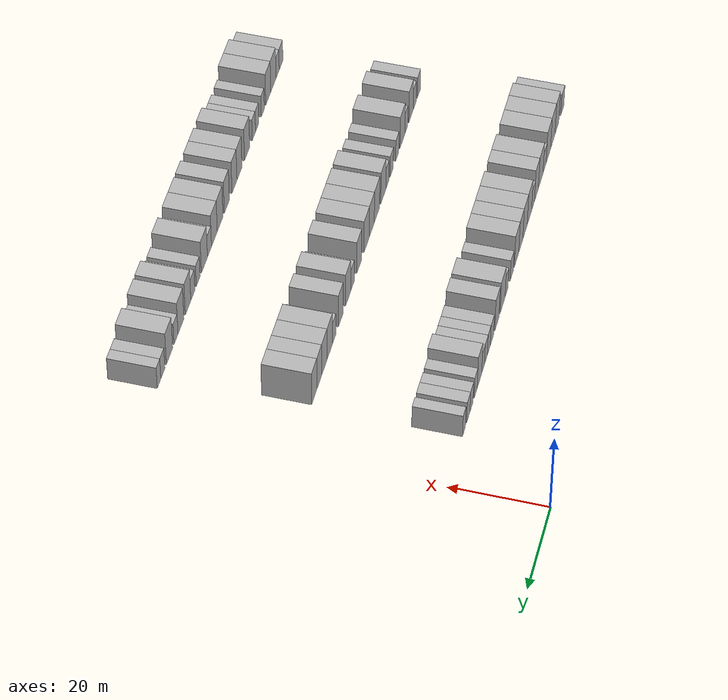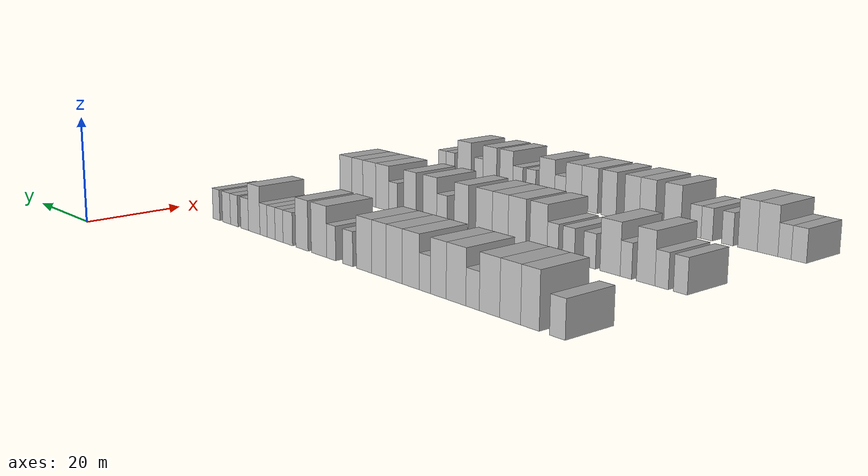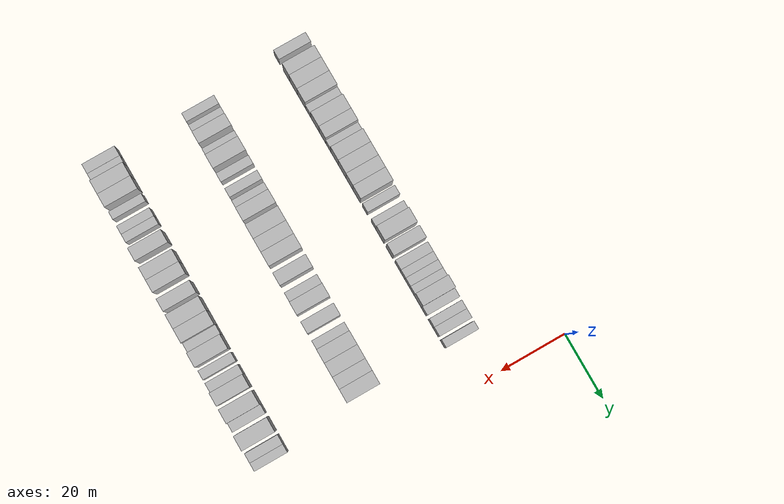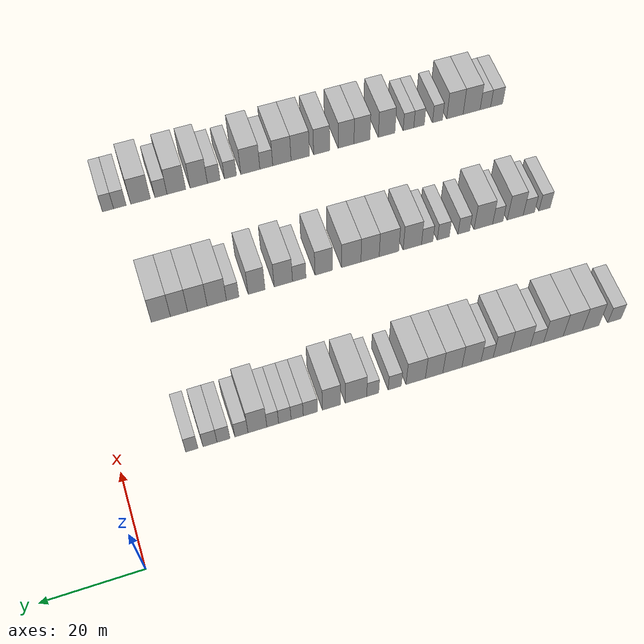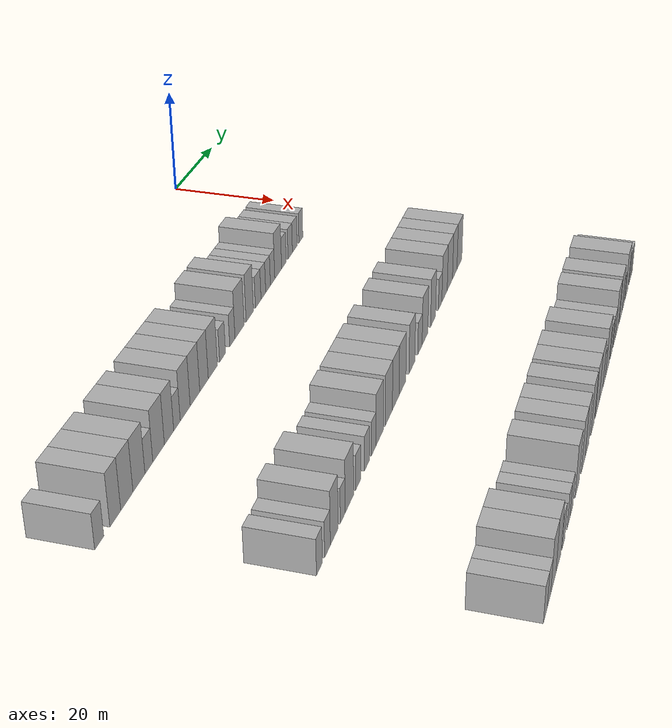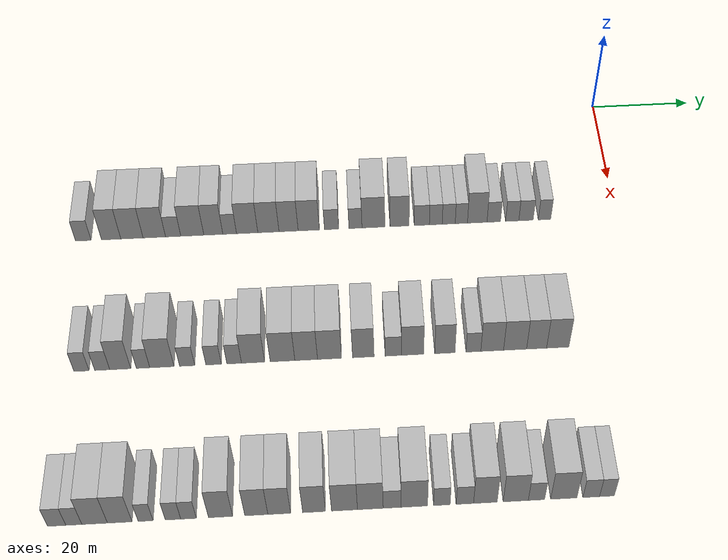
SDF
<sdf version="1.6">
 <world name="default">
  <model name="building_46">
   <static>1</static>
   <pose>25.0000 -104.0345 0 0.000000 0.000000 0.000000</pose>
   <link name="link">
    <pose>0 0 3.00 0 0 0</pose>
    <collision name="collision"><geometry><box><size>10.0000 2.9891 6.0000</size></box></geometry></collision>
    <visual name="visual">
     <cast_shadows>0</cast_shadows>
     <geometry><box><size>10.0000 2.9891 6.0000</size></box></geometry>
     <material>
      <script>
       <uri>model://HANNAS_wall/materials/scripts</uri>
       <uri>model://HANNAS_wall/materials/textures</uri>
       <name>vrc/HANNAS_wall</name>
      </script>
     </material>
    </visual>
   </link>
  </model>
  <model name="building_47">
   <static>1</static>
   <pose>25.0000 -98.6809 0 0.000000 0.000000 0.000000</pose>
   <link name="link">
    <pose>0 0 4.50 0 0 0</pose>
    <collision name="collision"><geometry><box><size>10.0000 3.7179 9.0000</size></box></geometry></collision>
    <visual name="visual">
     <cast_shadows>0</cast_shadows>
     <geometry><box><size>10.0000 3.7179 9.0000</size></box></geometry>
     <material>
      <script>
       <uri>model://HANNAS_wall/materials/scripts</uri>
       <uri>model://HANNAS_wall/materials/textures</uri>
       <name>vrc/HANNAS_wall</name>
      </script>
     </material>
    </visual>
   </link>
  </model>
  <model name="building_48">
   <static>1</static>
   <pose>25.0000 -94.6709 0 0.000000 0.000000 0.000000</pose>
   <link name="link">
    <pose>0 0 4.50 0 0 0</pose>
    <collision name="collision"><geometry><box><size>10.0000 4.3020 9.0000</size></box></geometry></collision>
    <visual name="visual">
     <cast_shadows>0</cast_shadows>
     <geometry><box><size>10.0000 4.3020 9.0000</size></box></geometry>
     <material>
      <script>
       <uri>model://HANNAS_wall/materials/scripts</uri>
       <uri>model://HANNAS_wall/materials/textures</uri>
       <name>vrc/HANNAS_wall</name>
      </script>
     </material>
    </visual>
   </link>
  </model>
  <model name="building_49">
   <static>1</static>
   <pose>25.0000 -90.3469 0 0.000000 0.000000 0.000000</pose>
   <link name="link">
    <pose>0 0 4.50 0 0 0</pose>
    <collision name="collision"><geometry><box><size>10.0000 4.3460 9.0000</size></box></geometry></collision>
    <visual name="visual">
     <cast_shadows>0</cast_shadows>
     <geometry><box><size>10.0000 4.3460 9.0000</size></box></geometry>
     <material>
      <script>
       <uri>model://HANNAS_wall/materials/scripts</uri>
       <uri>model://HANNAS_wall/materials/textures</uri>
       <name>vrc/HANNAS_wall</name>
      </script>
     </material>
    </visual>
   </link>
  </model>
  <model name="building_50">
   <static>1</static>
   <pose>25.0000 -86.6981 0 0.000000 0.000000 0.000000</pose>
   <link name="link">
    <pose>0 0 3.00 0 0 0</pose>
    <collision name="collision"><geometry><box><size>10.0000 2.9517 6.0000</size></box></geometry></collision>
    <visual name="visual">
     <cast_shadows>0</cast_shadows>
     <geometry><box><size>10.0000 2.9517 6.0000</size></box></geometry>
     <material>
      <script>
       <uri>model://HANNAS_wall/materials/scripts</uri>
       <uri>model://HANNAS_wall/materials/textures</uri>
       <name>vrc/HANNAS_wall</name>
      </script>
     </material>
    </visual>
   </link>
  </model>
  <model name="building_51">
   <static>1</static>
   <pose>25.0000 -82.9940 0 0.000000 0.000000 0.000000</pose>
   <link name="link">
    <pose>0 0 4.50 0 0 0</pose>
    <collision name="collision"><geometry><box><size>10.0000 4.4566 9.0000</size></box></geometry></collision>
    <visual name="visual">
     <cast_shadows>0</cast_shadows>
     <geometry><box><size>10.0000 4.4566 9.0000</size></box></geometry>
     <material>
      <script>
       <uri>model://HANNAS_wall/materials/scripts</uri>
       <uri>model://HANNAS_wall/materials/textures</uri>
       <name>vrc/HANNAS_wall</name>
      </script>
     </material>
    </visual>
   </link>
  </model>
  <model name="building_52">
   <static>1</static>
   <pose>25.0000 -78.9220 0 0.000000 0.000000 0.000000</pose>
   <link name="link">
    <pose>0 0 4.50 0 0 0</pose>
    <collision name="collision"><geometry><box><size>10.0000 3.6874 9.0000</size></box></geometry></collision>
    <visual name="visual">
     <cast_shadows>0</cast_shadows>
     <geometry><box><size>10.0000 3.6874 9.0000</size></box></geometry>
     <material>
      <script>
       <uri>model://HANNAS_wall/materials/scripts</uri>
       <uri>model://HANNAS_wall/materials/textures</uri>
       <name>vrc/HANNAS_wall</name>
      </script>
     </material>
    </visual>
   </link>
  </model>
  <model name="building_53">
   <static>1</static>
   <pose>25.0000 -75.7535 0 0.000000 0.000000 0.000000</pose>
   <link name="link">
    <pose>0 0 3.00 0 0 0</pose>
    <collision name="collision"><geometry><box><size>10.0000 2.6494 6.0000</size></box></geometry></collision>
    <visual name="visual">
     <cast_shadows>0</cast_shadows>
     <geometry><box><size>10.0000 2.6494 6.0000</size></box></geometry>
     <material>
      <script>
       <uri>model://HANNAS_wall/materials/scripts</uri>
       <uri>model://HANNAS_wall/materials/textures</uri>
       <name>vrc/HANNAS_wall</name>
      </script>
     </material>
    </visual>
   </link>
  </model>
  <model name="building_54">
   <static>1</static>
   <pose>25.0000 -72.3578 0 0.000000 0.000000 0.000000</pose>
   <link name="link">
    <pose>0 0 4.50 0 0 0</pose>
    <collision name="collision"><geometry><box><size>10.0000 4.1422 9.0000</size></box></geometry></collision>
    <visual name="visual">
     <cast_shadows>0</cast_shadows>
     <geometry><box><size>10.0000 4.1422 9.0000</size></box></geometry>
     <material>
      <script>
       <uri>model://HANNAS_wall/materials/scripts</uri>
       <uri>model://HANNAS_wall/materials/textures</uri>
       <name>vrc/HANNAS_wall</name>
      </script>
     </material>
    </visual>
   </link>
  </model>
  <model name="building_55">
   <static>1</static>
   <pose>25.0000 -68.2261 0 0.000000 0.000000 0.000000</pose>
   <link name="link">
    <pose>0 0 4.50 0 0 0</pose>
    <collision name="collision"><geometry><box><size>10.0000 4.1212 9.0000</size></box></geometry></collision>
    <visual name="visual">
     <cast_shadows>0</cast_shadows>
     <geometry><box><size>10.0000 4.1212 9.0000</size></box></geometry>
     <material>
      <script>
       <uri>model://HANNAS_wall/materials/scripts</uri>
       <uri>model://HANNAS_wall/materials/textures</uri>
       <name>vrc/HANNAS_wall</name>
      </script>
     </material>
    </visual>
   </link>
  </model>
  <model name="building_56">
   <static>1</static>
   <pose>25.0000 -64.2971 0 0.000000 0.000000 0.000000</pose>
   <link name="link">
    <pose>0 0 4.50 0 0 0</pose>
    <collision name="collision"><geometry><box><size>10.0000 3.7368 9.0000</size></box></geometry></collision>
    <visual name="visual">
     <cast_shadows>0</cast_shadows>
     <geometry><box><size>10.0000 3.7368 9.0000</size></box></geometry>
     <material>
      <script>
       <uri>model://HANNAS_wall/materials/scripts</uri>
       <uri>model://HANNAS_wall/materials/textures</uri>
       <name>vrc/HANNAS_wall</name>
      </script>
     </material>
    </visual>
   </link>
  </model>
  <model name="building_57">
   <static>1</static>
   <pose>25.0000 -60.3658 0 0.000000 0.000000 0.000000</pose>
   <link name="link">
    <pose>0 0 4.50 0 0 0</pose>
    <collision name="collision"><geometry><box><size>10.0000 4.1258 9.0000</size></box></geometry></collision>
    <visual name="visual">
     <cast_shadows>0</cast_shadows>
     <geometry><box><size>10.0000 4.1258 9.0000</size></box></geometry>
     <material>
      <script>
       <uri>model://HANNAS_wall/materials/scripts</uri>
       <uri>model://HANNAS_wall/materials/textures</uri>
       <name>vrc/HANNAS_wall</name>
      </script>
     </material>
    </visual>
   </link>
  </model>
  <model name="building_58">
   <static>1</static>
   <pose>25.0000 -55.9128 0 0.000000 0.000000 0.000000</pose>
   <link name="link">
    <pose>0 0 3.00 0 0 0</pose>
    <collision name="collision"><geometry><box><size>10.0000 2.7802 6.0000</size></box></geometry></collision>
    <visual name="visual">
     <cast_shadows>0</cast_shadows>
     <geometry><box><size>10.0000 2.7802 6.0000</size></box></geometry>
     <material>
      <script>
       <uri>model://HANNAS_wall/materials/scripts</uri>
       <uri>model://HANNAS_wall/materials/textures</uri>
       <name>vrc/HANNAS_wall</name>
      </script>
     </material>
    </visual>
   </link>
  </model>
  <model name="building_59">
   <static>1</static>
   <pose>25.0000 -51.2507 0 0.000000 0.000000 0.000000</pose>
   <link name="link">
    <pose>0 0 3.00 0 0 0</pose>
    <collision name="collision"><geometry><box><size>10.0000 2.5441 6.0000</size></box></geometry></collision>
    <visual name="visual">
     <cast_shadows>0</cast_shadows>
     <geometry><box><size>10.0000 2.5441 6.0000</size></box></geometry>
     <material>
      <script>
       <uri>model://HANNAS_wall/materials/scripts</uri>
       <uri>model://HANNAS_wall/materials/textures</uri>
       <name>vrc/HANNAS_wall</name>
      </script>
     </material>
    </visual>
   </link>
  </model>
  <model name="building_60">
   <static>1</static>
   <pose>25.0000 -47.7324 0 0.000000 0.000000 0.000000</pose>
   <link name="link">
    <pose>0 0 4.50 0 0 0</pose>
    <collision name="collision"><geometry><box><size>10.0000 4.4926 9.0000</size></box></geometry></collision>
    <visual name="visual">
     <cast_shadows>0</cast_shadows>
     <geometry><box><size>10.0000 4.4926 9.0000</size></box></geometry>
     <material>
      <script>
       <uri>model://HANNAS_wall/materials/scripts</uri>
       <uri>model://HANNAS_wall/materials/textures</uri>
       <name>vrc/HANNAS_wall</name>
      </script>
     </material>
    </visual>
   </link>
  </model>
  <model name="building_61">
   <static>1</static>
   <pose>25.0000 -42.6167 0 0.000000 0.000000 0.000000</pose>
   <link name="link">
    <pose>0 0 4.50 0 0 0</pose>
    <collision name="collision"><geometry><box><size>10.0000 3.7388 9.0000</size></box></geometry></collision>
    <visual name="visual">
     <cast_shadows>0</cast_shadows>
     <geometry><box><size>10.0000 3.7388 9.0000</size></box></geometry>
     <material>
      <script>
       <uri>model://HANNAS_wall/materials/scripts</uri>
       <uri>model://HANNAS_wall/materials/textures</uri>
       <name>vrc/HANNAS_wall</name>
      </script>
     </material>
    </visual>
   </link>
  </model>
  <model name="building_62">
   <static>1</static>
   <pose>25.0000 -38.2618 0 0.000000 0.000000 0.000000</pose>
   <link name="link">
    <pose>0 0 3.00 0 0 0</pose>
    <collision name="collision"><geometry><box><size>10.0000 2.9709 6.0000</size></box></geometry></collision>
    <visual name="visual">
     <cast_shadows>0</cast_shadows>
     <geometry><box><size>10.0000 2.9709 6.0000</size></box></geometry>
     <material>
      <script>
       <uri>model://HANNAS_wall/materials/scripts</uri>
       <uri>model://HANNAS_wall/materials/textures</uri>
       <name>vrc/HANNAS_wall</name>
      </script>
     </material>
    </visual>
   </link>
  </model>
  <model name="building_63">
   <static>1</static>
   <pose>25.0000 -35.5204 0 0.000000 0.000000 0.000000</pose>
   <link name="link">
    <pose>0 0 3.00 0 0 0</pose>
    <collision name="collision"><geometry><box><size>10.0000 2.5118 6.0000</size></box></geometry></collision>
    <visual name="visual">
     <cast_shadows>0</cast_shadows>
     <geometry><box><size>10.0000 2.5118 6.0000</size></box></geometry>
     <material>
      <script>
       <uri>model://HANNAS_wall/materials/scripts</uri>
       <uri>model://HANNAS_wall/materials/textures</uri>
       <name>vrc/HANNAS_wall</name>
      </script>
     </material>
    </visual>
   </link>
  </model>
  <model name="building_64">
   <static>1</static>
   <pose>25.0000 -32.9837 0 0.000000 0.000000 0.000000</pose>
   <link name="link">
    <pose>0 0 3.00 0 0 0</pose>
    <collision name="collision"><geometry><box><size>10.0000 2.5616 6.0000</size></box></geometry></collision>
    <visual name="visual">
     <cast_shadows>0</cast_shadows>
     <geometry><box><size>10.0000 2.5616 6.0000</size></box></geometry>
     <material>
      <script>
       <uri>model://HANNAS_wall/materials/scripts</uri>
       <uri>model://HANNAS_wall/materials/textures</uri>
       <name>vrc/HANNAS_wall</name>
      </script>
     </material>
    </visual>
   </link>
  </model>
  <model name="building_65">
   <static>1</static>
   <pose>25.0000 -30.4996 0 0.000000 0.000000 0.000000</pose>
   <link name="link">
    <pose>0 0 3.00 0 0 0</pose>
    <collision name="collision"><geometry><box><size>10.0000 2.4065 6.0000</size></box></geometry></collision>
    <visual name="visual">
     <cast_shadows>0</cast_shadows>
     <geometry><box><size>10.0000 2.4065 6.0000</size></box></geometry>
     <material>
      <script>
       <uri>model://HANNAS_wall/materials/scripts</uri>
       <uri>model://HANNAS_wall/materials/textures</uri>
       <name>vrc/HANNAS_wall</name>
      </script>
     </material>
    </visual>
   </link>
  </model>
  <model name="building_66">
   <static>1</static>
   <pose>25.0000 -27.3746 0 0.000000 0.000000 0.000000</pose>
   <link name="link">
    <pose>0 0 4.50 0 0 0</pose>
    <collision name="collision"><geometry><box><size>10.0000 3.8436 9.0000</size></box></geometry></collision>
    <visual name="visual">
     <cast_shadows>0</cast_shadows>
     <geometry><box><size>10.0000 3.8436 9.0000</size></box></geometry>
     <material>
      <script>
       <uri>model://HANNAS_wall/materials/scripts</uri>
       <uri>model://HANNAS_wall/materials/textures</uri>
       <name>vrc/HANNAS_wall</name>
      </script>
     </material>
    </visual>
   </link>
  </model>
  <model name="building_67">
   <static>1</static>
   <pose>25.0000 -24.1192 0 0.000000 0.000000 0.000000</pose>
   <link name="link">
    <pose>0 0 3.00 0 0 0</pose>
    <collision name="collision"><geometry><box><size>10.0000 2.6672 6.0000</size></box></geometry></collision>
    <visual name="visual">
     <cast_shadows>0</cast_shadows>
     <geometry><box><size>10.0000 2.6672 6.0000</size></box></geometry>
     <material>
      <script>
       <uri>model://HANNAS_wall/materials/scripts</uri>
       <uri>model://HANNAS_wall/materials/textures</uri>
       <name>vrc/HANNAS_wall</name>
      </script>
     </material>
    </visual>
   </link>
  </model>
  <model name="building_68">
   <static>1</static>
   <pose>25.0000 -20.4829 0 0.000000 0.000000 0.000000</pose>
   <link name="link">
    <pose>0 0 3.00 0 0 0</pose>
    <collision name="collision"><geometry><box><size>10.0000 2.6054 6.0000</size></box></geometry></collision>
    <visual name="visual">
     <cast_shadows>0</cast_shadows>
     <geometry><box><size>10.0000 2.6054 6.0000</size></box></geometry>
     <material>
      <script>
       <uri>model://HANNAS_wall/materials/scripts</uri>
       <uri>model://HANNAS_wall/materials/textures</uri>
       <name>vrc/HANNAS_wall</name>
      </script>
     </material>
    </visual>
   </link>
  </model>
  <model name="building_69">
   <static>1</static>
   <pose>25.0000 -17.7630 0 0.000000 0.000000 0.000000</pose>
   <link name="link">
    <pose>0 0 3.00 0 0 0</pose>
    <collision name="collision"><geometry><box><size>10.0000 2.8343 6.0000</size></box></geometry></collision>
    <visual name="visual">
     <cast_shadows>0</cast_shadows>
     <geometry><box><size>10.0000 2.8343 6.0000</size></box></geometry>
     <material>
      <script>
       <uri>model://HANNAS_wall/materials/scripts</uri>
       <uri>model://HANNAS_wall/materials/textures</uri>
       <name>vrc/HANNAS_wall</name>
      </script>
     </material>
    </visual>
   </link>
  </model>
  <model name="building_70">
   <static>1</static>
   <pose>25.0000 -14.1140 0 0.000000 0.000000 0.000000</pose>
   <link name="link">
    <pose>0 0 3.00 0 0 0</pose>
    <collision name="collision"><geometry><box><size>10.0000 2.4637 6.0000</size></box></geometry></collision>
    <visual name="visual">
     <cast_shadows>0</cast_shadows>
     <geometry><box><size>10.0000 2.4637 6.0000</size></box></geometry>
     <material>
      <script>
       <uri>model://HANNAS_wall/materials/scripts</uri>
       <uri>model://HANNAS_wall/materials/textures</uri>
       <name>vrc/HANNAS_wall</name>
      </script>
     </material>
    </visual>
   </link>
  </model>
  <model name="building_186">
   <static>1</static>
   <pose>55.0000 -101.4500 0 0.000000 0.000000 0.000000</pose>
   <link name="link">
    <pose>0 0 3.00 0 0 0</pose>
    <collision name="collision"><geometry><box><size>10.0000 2.6939 6.0000</size></box></geometry></collision>
    <visual name="visual">
     <cast_shadows>0</cast_shadows>
     <geometry><box><size>10.0000 2.6939 6.0000</size></box></geometry>
     <material>
      <script>
       <uri>model://HANNAS_wall/materials/scripts</uri>
       <uri>model://HANNAS_wall/materials/textures</uri>
       <name>vrc/HANNAS_wall</name>
      </script>
     </material>
    </visual>
   </link>
  </model>
  <model name="building_187">
   <static>1</static>
   <pose>55.0000 -97.7652 0 0.000000 0.000000 0.000000</pose>
   <link name="link">
    <pose>0 0 3.00 0 0 0</pose>
    <collision name="collision"><geometry><box><size>10.0000 2.6757 6.0000</size></box></geometry></collision>
    <visual name="visual">
     <cast_shadows>0</cast_shadows>
     <geometry><box><size>10.0000 2.6757 6.0000</size></box></geometry>
     <material>
      <script>
       <uri>model://HANNAS_wall/materials/scripts</uri>
       <uri>model://HANNAS_wall/materials/textures</uri>
       <name>vrc/HANNAS_wall</name>
      </script>
     </material>
    </visual>
   </link>
  </model>
  <model name="building_188">
   <static>1</static>
   <pose>55.0000 -94.5531 0 0.000000 0.000000 0.000000</pose>
   <link name="link">
    <pose>0 0 4.50 0 0 0</pose>
    <collision name="collision"><geometry><box><size>10.0000 3.7484 9.0000</size></box></geometry></collision>
    <visual name="visual">
     <cast_shadows>0</cast_shadows>
     <geometry><box><size>10.0000 3.7484 9.0000</size></box></geometry>
     <material>
      <script>
       <uri>model://HANNAS_wall/materials/scripts</uri>
       <uri>model://HANNAS_wall/materials/textures</uri>
       <name>vrc/HANNAS_wall</name>
      </script>
     </material>
    </visual>
   </link>
  </model>
  <model name="building_189">
   <static>1</static>
   <pose>55.0000 -90.4781 0 0.000000 0.000000 0.000000</pose>
   <link name="link">
    <pose>0 0 3.00 0 0 0</pose>
    <collision name="collision"><geometry><box><size>10.0000 2.4016 6.0000</size></box></geometry></collision>
    <visual name="visual">
     <cast_shadows>0</cast_shadows>
     <geometry><box><size>10.0000 2.4016 6.0000</size></box></geometry>
     <material>
      <script>
       <uri>model://HANNAS_wall/materials/scripts</uri>
       <uri>model://HANNAS_wall/materials/textures</uri>
       <name>vrc/HANNAS_wall</name>
      </script>
     </material>
    </visual>
   </link>
  </model>
  <model name="building_190">
   <static>1</static>
   <pose>55.0000 -87.1109 0 0.000000 0.000000 0.000000</pose>
   <link name="link">
    <pose>0 0 4.50 0 0 0</pose>
    <collision name="collision"><geometry><box><size>10.0000 4.3329 9.0000</size></box></geometry></collision>
    <visual name="visual">
     <cast_shadows>0</cast_shadows>
     <geometry><box><size>10.0000 4.3329 9.0000</size></box></geometry>
     <material>
      <script>
       <uri>model://HANNAS_wall/materials/scripts</uri>
       <uri>model://HANNAS_wall/materials/textures</uri>
       <name>vrc/HANNAS_wall</name>
      </script>
     </material>
    </visual>
   </link>
  </model>
  <model name="building_191">
   <static>1</static>
   <pose>55.0000 -82.5904 0 0.000000 0.000000 0.000000</pose>
   <link name="link">
    <pose>0 0 3.00 0 0 0</pose>
    <collision name="collision"><geometry><box><size>10.0000 2.7079 6.0000</size></box></geometry></collision>
    <visual name="visual">
     <cast_shadows>0</cast_shadows>
     <geometry><box><size>10.0000 2.7079 6.0000</size></box></geometry>
     <material>
      <script>
       <uri>model://HANNAS_wall/materials/scripts</uri>
       <uri>model://HANNAS_wall/materials/textures</uri>
       <name>vrc/HANNAS_wall</name>
      </script>
     </material>
    </visual>
   </link>
  </model>
  <model name="building_192">
   <static>1</static>
   <pose>55.0000 -77.8563 0 0.000000 0.000000 0.000000</pose>
   <link name="link">
    <pose>0 0 3.00 0 0 0</pose>
    <collision name="collision"><geometry><box><size>10.0000 2.7604 6.0000</size></box></geometry></collision>
    <visual name="visual">
     <cast_shadows>0</cast_shadows>
     <geometry><box><size>10.0000 2.7604 6.0000</size></box></geometry>
     <material>
      <script>
       <uri>model://HANNAS_wall/materials/scripts</uri>
       <uri>model://HANNAS_wall/materials/textures</uri>
       <name>vrc/HANNAS_wall</name>
      </script>
     </material>
    </visual>
   </link>
  </model>
  <model name="building_193">
   <static>1</static>
   <pose>55.0000 -74.1628 0 0.000000 0.000000 0.000000</pose>
   <link name="link">
    <pose>0 0 3.00 0 0 0</pose>
    <collision name="collision"><geometry><box><size>10.0000 2.6265 6.0000</size></box></geometry></collision>
    <visual name="visual">
     <cast_shadows>0</cast_shadows>
     <geometry><box><size>10.0000 2.6265 6.0000</size></box></geometry>
     <material>
      <script>
       <uri>model://HANNAS_wall/materials/scripts</uri>
       <uri>model://HANNAS_wall/materials/textures</uri>
       <name>vrc/HANNAS_wall</name>
      </script>
     </material>
    </visual>
   </link>
  </model>
  <model name="building_194">
   <static>1</static>
   <pose>55.0000 -70.7684 0 0.000000 0.000000 0.000000</pose>
   <link name="link">
    <pose>0 0 4.50 0 0 0</pose>
    <collision name="collision"><geometry><box><size>10.0000 4.1622 9.0000</size></box></geometry></collision>
    <visual name="visual">
     <cast_shadows>0</cast_shadows>
     <geometry><box><size>10.0000 4.1622 9.0000</size></box></geometry>
     <material>
      <script>
       <uri>model://HANNAS_wall/materials/scripts</uri>
       <uri>model://HANNAS_wall/materials/textures</uri>
       <name>vrc/HANNAS_wall</name>
      </script>
     </material>
    </visual>
   </link>
  </model>
  <model name="building_195">
   <static>1</static>
   <pose>55.0000 -65.4732 0 0.000000 0.000000 0.000000</pose>
   <link name="link">
    <pose>0 0 4.50 0 0 0</pose>
    <collision name="collision"><geometry><box><size>10.0000 4.4281 9.0000</size></box></geometry></collision>
    <visual name="visual">
     <cast_shadows>0</cast_shadows>
     <geometry><box><size>10.0000 4.4281 9.0000</size></box></geometry>
     <material>
      <script>
       <uri>model://HANNAS_wall/materials/scripts</uri>
       <uri>model://HANNAS_wall/materials/textures</uri>
       <name>vrc/HANNAS_wall</name>
      </script>
     </material>
    </visual>
   </link>
  </model>
  <model name="building_196">
   <static>1</static>
   <pose>55.0000 -61.2111 0 0.000000 0.000000 0.000000</pose>
   <link name="link">
    <pose>0 0 4.50 0 0 0</pose>
    <collision name="collision"><geometry><box><size>10.0000 4.0962 9.0000</size></box></geometry></collision>
    <visual name="visual">
     <cast_shadows>0</cast_shadows>
     <geometry><box><size>10.0000 4.0962 9.0000</size></box></geometry>
     <material>
      <script>
       <uri>model://HANNAS_wall/materials/scripts</uri>
       <uri>model://HANNAS_wall/materials/textures</uri>
       <name>vrc/HANNAS_wall</name>
      </script>
     </material>
    </visual>
   </link>
  </model>
  <model name="building_197">
   <static>1</static>
   <pose>55.0000 -57.0002 0 0.000000 0.000000 0.000000</pose>
   <link name="link">
    <pose>0 0 4.50 0 0 0</pose>
    <collision name="collision"><geometry><box><size>10.0000 4.3257 9.0000</size></box></geometry></collision>
    <visual name="visual">
     <cast_shadows>0</cast_shadows>
     <geometry><box><size>10.0000 4.3257 9.0000</size></box></geometry>
     <material>
      <script>
       <uri>model://HANNAS_wall/materials/scripts</uri>
       <uri>model://HANNAS_wall/materials/textures</uri>
       <name>vrc/HANNAS_wall</name>
      </script>
     </material>
    </visual>
   </link>
  </model>
  <model name="building_198">
   <static>1</static>
   <pose>55.0000 -50.8904 0 0.000000 0.000000 0.000000</pose>
   <link name="link">
    <pose>0 0 4.50 0 0 0</pose>
    <collision name="collision"><geometry><box><size>10.0000 3.8938 9.0000</size></box></geometry></collision>
    <visual name="visual">
     <cast_shadows>0</cast_shadows>
     <geometry><box><size>10.0000 3.8938 9.0000</size></box></geometry>
     <material>
      <script>
       <uri>model://HANNAS_wall/materials/scripts</uri>
       <uri>model://HANNAS_wall/materials/textures</uri>
       <name>vrc/HANNAS_wall</name>
      </script>
     </material>
    </visual>
   </link>
  </model>
  <model name="building_199">
   <static>1</static>
   <pose>55.0000 -45.4623 0 0.000000 0.000000 0.000000</pose>
   <link name="link">
    <pose>0 0 3.00 0 0 0</pose>
    <collision name="collision"><geometry><box><size>10.0000 2.9624 6.0000</size></box></geometry></collision>
    <visual name="visual">
     <cast_shadows>0</cast_shadows>
     <geometry><box><size>10.0000 2.9624 6.0000</size></box></geometry>
     <material>
      <script>
       <uri>model://HANNAS_wall/materials/scripts</uri>
       <uri>model://HANNAS_wall/materials/textures</uri>
       <name>vrc/HANNAS_wall</name>
      </script>
     </material>
    </visual>
   </link>
  </model>
  <model name="building_200">
   <static>1</static>
   <pose>55.0000 -41.9709 0 0.000000 0.000000 0.000000</pose>
   <link name="link">
    <pose>0 0 4.50 0 0 0</pose>
    <collision name="collision"><geometry><box><size>10.0000 4.0204 9.0000</size></box></geometry></collision>
    <visual name="visual">
     <cast_shadows>0</cast_shadows>
     <geometry><box><size>10.0000 4.0204 9.0000</size></box></geometry>
     <material>
      <script>
       <uri>model://HANNAS_wall/materials/scripts</uri>
       <uri>model://HANNAS_wall/materials/textures</uri>
       <name>vrc/HANNAS_wall</name>
      </script>
     </material>
    </visual>
   </link>
  </model>
  <model name="building_201">
   <static>1</static>
   <pose>55.0000 -36.1220 0 0.000000 0.000000 0.000000</pose>
   <link name="link">
    <pose>0 0 4.50 0 0 0</pose>
    <collision name="collision"><geometry><box><size>10.0000 3.6775 9.0000</size></box></geometry></collision>
    <visual name="visual">
     <cast_shadows>0</cast_shadows>
     <geometry><box><size>10.0000 3.6775 9.0000</size></box></geometry>
     <material>
      <script>
       <uri>model://HANNAS_wall/materials/scripts</uri>
       <uri>model://HANNAS_wall/materials/textures</uri>
       <name>vrc/HANNAS_wall</name>
      </script>
     </material>
    </visual>
   </link>
  </model>
  <model name="building_202">
   <static>1</static>
   <pose>55.0000 -30.9307 0 0.000000 0.000000 0.000000</pose>
   <link name="link">
    <pose>0 0 3.00 0 0 0</pose>
    <collision name="collision"><geometry><box><size>10.0000 2.7050 6.0000</size></box></geometry></collision>
    <visual name="visual">
     <cast_shadows>0</cast_shadows>
     <geometry><box><size>10.0000 2.7050 6.0000</size></box></geometry>
     <material>
      <script>
       <uri>model://HANNAS_wall/materials/scripts</uri>
       <uri>model://HANNAS_wall/materials/textures</uri>
       <name>vrc/HANNAS_wall</name>
      </script>
     </material>
    </visual>
   </link>
  </model>
  <model name="building_203">
   <static>1</static>
   <pose>55.0000 -27.5062 0 0.000000 0.000000 0.000000</pose>
   <link name="link">
    <pose>0 0 4.50 0 0 0</pose>
    <collision name="collision"><geometry><box><size>10.0000 4.1440 9.0000</size></box></geometry></collision>
    <visual name="visual">
     <cast_shadows>0</cast_shadows>
     <geometry><box><size>10.0000 4.1440 9.0000</size></box></geometry>
     <material>
      <script>
       <uri>model://HANNAS_wall/materials/scripts</uri>
       <uri>model://HANNAS_wall/materials/textures</uri>
       <name>vrc/HANNAS_wall</name>
      </script>
     </material>
    </visual>
   </link>
  </model>
  <model name="building_204">
   <static>1</static>
   <pose>55.0000 -23.3338 0 0.000000 0.000000 0.000000</pose>
   <link name="link">
    <pose>0 0 4.50 0 0 0</pose>
    <collision name="collision"><geometry><box><size>10.0000 4.2008 9.0000</size></box></geometry></collision>
    <visual name="visual">
     <cast_shadows>0</cast_shadows>
     <geometry><box><size>10.0000 4.2008 9.0000</size></box></geometry>
     <material>
      <script>
       <uri>model://HANNAS_wall/materials/scripts</uri>
       <uri>model://HANNAS_wall/materials/textures</uri>
       <name>vrc/HANNAS_wall</name>
      </script>
     </material>
    </visual>
   </link>
  </model>
  <model name="building_205">
   <static>1</static>
   <pose>55.0000 -19.4039 0 0.000000 0.000000 0.000000</pose>
   <link name="link">
    <pose>0 0 4.50 0 0 0</pose>
    <collision name="collision"><geometry><box><size>10.0000 3.6589 9.0000</size></box></geometry></collision>
    <visual name="visual">
     <cast_shadows>0</cast_shadows>
     <geometry><box><size>10.0000 3.6589 9.0000</size></box></geometry>
     <material>
      <script>
       <uri>model://HANNAS_wall/materials/scripts</uri>
       <uri>model://HANNAS_wall/materials/textures</uri>
       <name>vrc/HANNAS_wall</name>
      </script>
     </material>
    </visual>
   </link>
  </model>
  <model name="building_206">
   <static>1</static>
   <pose>55.0000 -15.5398 0 0.000000 0.000000 0.000000</pose>
   <link name="link">
    <pose>0 0 4.50 0 0 0</pose>
    <collision name="collision"><geometry><box><size>10.0000 4.0693 9.0000</size></box></geometry></collision>
    <visual name="visual">
     <cast_shadows>0</cast_shadows>
     <geometry><box><size>10.0000 4.0693 9.0000</size></box></geometry>
     <material>
      <script>
       <uri>model://HANNAS_wall/materials/scripts</uri>
       <uri>model://HANNAS_wall/materials/textures</uri>
       <name>vrc/HANNAS_wall</name>
      </script>
     </material>
    </visual>
   </link>
  </model>
  <model name="building_316">
   <static>1</static>
   <pose>85.0000 -102.5688 0 0.000000 0.000000 0.000000</pose>
   <link name="link">
    <pose>0 0 3.00 0 0 0</pose>
    <collision name="collision"><geometry><box><size>10.0000 2.9749 6.0000</size></box></geometry></collision>
    <visual name="visual">
     <cast_shadows>0</cast_shadows>
     <geometry><box><size>10.0000 2.9749 6.0000</size></box></geometry>
     <material>
      <script>
       <uri>model://HANNAS_wall/materials/scripts</uri>
       <uri>model://HANNAS_wall/materials/textures</uri>
       <name>vrc/HANNAS_wall</name>
      </script>
     </material>
    </visual>
   </link>
  </model>
  <model name="building_317">
   <static>1</static>
   <pose>85.0000 -99.7713 0 0.000000 0.000000 0.000000</pose>
   <link name="link">
    <pose>0 0 3.00 0 0 0</pose>
    <collision name="collision"><geometry><box><size>10.0000 2.6202 6.0000</size></box></geometry></collision>
    <visual name="visual">
     <cast_shadows>0</cast_shadows>
     <geometry><box><size>10.0000 2.6202 6.0000</size></box></geometry>
     <material>
      <script>
       <uri>model://HANNAS_wall/materials/scripts</uri>
       <uri>model://HANNAS_wall/materials/textures</uri>
       <name>vrc/HANNAS_wall</name>
      </script>
     </material>
    </visual>
   </link>
  </model>
  <model name="building_318">
   <static>1</static>
   <pose>85.0000 -96.3690 0 0.000000 0.000000 0.000000</pose>
   <link name="link">
    <pose>0 0 4.50 0 0 0</pose>
    <collision name="collision"><geometry><box><size>10.0000 4.1844 9.0000</size></box></geometry></collision>
    <visual name="visual">
     <cast_shadows>0</cast_shadows>
     <geometry><box><size>10.0000 4.1844 9.0000</size></box></geometry>
     <material>
      <script>
       <uri>model://HANNAS_wall/materials/scripts</uri>
       <uri>model://HANNAS_wall/materials/textures</uri>
       <name>vrc/HANNAS_wall</name>
      </script>
     </material>
    </visual>
   </link>
  </model>
  <model name="building_319">
   <static>1</static>
   <pose>85.0000 -92.2621 0 0.000000 0.000000 0.000000</pose>
   <link name="link">
    <pose>0 0 4.50 0 0 0</pose>
    <collision name="collision"><geometry><box><size>10.0000 4.0293 9.0000</size></box></geometry></collision>
    <visual name="visual">
     <cast_shadows>0</cast_shadows>
     <geometry><box><size>10.0000 4.0293 9.0000</size></box></geometry>
     <material>
      <script>
       <uri>model://HANNAS_wall/materials/scripts</uri>
       <uri>model://HANNAS_wall/materials/textures</uri>
       <name>vrc/HANNAS_wall</name>
      </script>
     </material>
    </visual>
   </link>
  </model>
  <model name="building_320">
   <static>1</static>
   <pose>85.0000 -88.0224 0 0.000000 0.000000 0.000000</pose>
   <link name="link">
    <pose>0 0 3.00 0 0 0</pose>
    <collision name="collision"><geometry><box><size>10.0000 2.4503 6.0000</size></box></geometry></collision>
    <visual name="visual">
     <cast_shadows>0</cast_shadows>
     <geometry><box><size>10.0000 2.4503 6.0000</size></box></geometry>
     <material>
      <script>
       <uri>model://HANNAS_wall/materials/scripts</uri>
       <uri>model://HANNAS_wall/materials/textures</uri>
       <name>vrc/HANNAS_wall</name>
      </script>
     </material>
    </visual>
   </link>
  </model>
  <model name="building_321">
   <static>1</static>
   <pose>85.0000 -83.5232 0 0.000000 0.000000 0.000000</pose>
   <link name="link">
    <pose>0 0 3.00 0 0 0</pose>
    <collision name="collision"><geometry><box><size>10.0000 2.5479 6.0000</size></box></geometry></collision>
    <visual name="visual">
     <cast_shadows>0</cast_shadows>
     <geometry><box><size>10.0000 2.5479 6.0000</size></box></geometry>
     <material>
      <script>
       <uri>model://HANNAS_wall/materials/scripts</uri>
       <uri>model://HANNAS_wall/materials/textures</uri>
       <name>vrc/HANNAS_wall</name>
      </script>
     </material>
    </visual>
   </link>
  </model>
  <model name="building_322">
   <static>1</static>
   <pose>85.0000 -80.9681 0 0.000000 0.000000 0.000000</pose>
   <link name="link">
    <pose>0 0 3.00 0 0 0</pose>
    <collision name="collision"><geometry><box><size>10.0000 2.5623 6.0000</size></box></geometry></collision>
    <visual name="visual">
     <cast_shadows>0</cast_shadows>
     <geometry><box><size>10.0000 2.5623 6.0000</size></box></geometry>
     <material>
      <script>
       <uri>model://HANNAS_wall/materials/scripts</uri>
       <uri>model://HANNAS_wall/materials/textures</uri>
       <name>vrc/HANNAS_wall</name>
      </script>
     </material>
    </visual>
   </link>
  </model>
  <model name="building_323">
   <static>1</static>
   <pose>85.0000 -75.6938 0 0.000000 0.000000 0.000000</pose>
   <link name="link">
    <pose>0 0 4.50 0 0 0</pose>
    <collision name="collision"><geometry><box><size>10.0000 3.9863 9.0000</size></box></geometry></collision>
    <visual name="visual">
     <cast_shadows>0</cast_shadows>
     <geometry><box><size>10.0000 3.9863 9.0000</size></box></geometry>
     <material>
      <script>
       <uri>model://HANNAS_wall/materials/scripts</uri>
       <uri>model://HANNAS_wall/materials/textures</uri>
       <name>vrc/HANNAS_wall</name>
      </script>
     </material>
    </visual>
   </link>
  </model>
  <model name="building_324">
   <static>1</static>
   <pose>85.0000 -69.7963 0 0.000000 0.000000 0.000000</pose>
   <link name="link">
    <pose>0 0 4.50 0 0 0</pose>
    <collision name="collision"><geometry><box><size>10.0000 3.8086 9.0000</size></box></geometry></collision>
    <visual name="visual">
     <cast_shadows>0</cast_shadows>
     <geometry><box><size>10.0000 3.8086 9.0000</size></box></geometry>
     <material>
      <script>
       <uri>model://HANNAS_wall/materials/scripts</uri>
       <uri>model://HANNAS_wall/materials/textures</uri>
       <name>vrc/HANNAS_wall</name>
      </script>
     </material>
    </visual>
   </link>
  </model>
  <model name="building_325">
   <static>1</static>
   <pose>85.0000 -66.0118 0 0.000000 0.000000 0.000000</pose>
   <link name="link">
    <pose>0 0 4.50 0 0 0</pose>
    <collision name="collision"><geometry><box><size>10.0000 3.7604 9.0000</size></box></geometry></collision>
    <visual name="visual">
     <cast_shadows>0</cast_shadows>
     <geometry><box><size>10.0000 3.7604 9.0000</size></box></geometry>
     <material>
      <script>
       <uri>model://HANNAS_wall/materials/scripts</uri>
       <uri>model://HANNAS_wall/materials/textures</uri>
       <name>vrc/HANNAS_wall</name>
      </script>
     </material>
    </visual>
   </link>
  </model>
  <model name="building_326">
   <static>1</static>
   <pose>85.0000 -60.2404 0 0.000000 0.000000 0.000000</pose>
   <link name="link">
    <pose>0 0 4.50 0 0 0</pose>
    <collision name="collision"><geometry><box><size>10.0000 3.7825 9.0000</size></box></geometry></collision>
    <visual name="visual">
     <cast_shadows>0</cast_shadows>
     <geometry><box><size>10.0000 3.7825 9.0000</size></box></geometry>
     <material>
      <script>
       <uri>model://HANNAS_wall/materials/scripts</uri>
       <uri>model://HANNAS_wall/materials/textures</uri>
       <name>vrc/HANNAS_wall</name>
      </script>
     </material>
    </visual>
   </link>
  </model>
  <model name="building_327">
   <static>1</static>
   <pose>85.0000 -55.1998 0 0.000000 0.000000 0.000000</pose>
   <link name="link">
    <pose>0 0 4.50 0 0 0</pose>
    <collision name="collision"><geometry><box><size>10.0000 4.2986 9.0000</size></box></geometry></collision>
    <visual name="visual">
     <cast_shadows>0</cast_shadows>
     <geometry><box><size>10.0000 4.2986 9.0000</size></box></geometry>
     <material>
      <script>
       <uri>model://HANNAS_wall/materials/scripts</uri>
       <uri>model://HANNAS_wall/materials/textures</uri>
       <name>vrc/HANNAS_wall</name>
      </script>
     </material>
    </visual>
   </link>
  </model>
  <model name="building_328">
   <static>1</static>
   <pose>85.0000 -50.9157 0 0.000000 0.000000 0.000000</pose>
   <link name="link">
    <pose>0 0 4.50 0 0 0</pose>
    <collision name="collision"><geometry><box><size>10.0000 4.2697 9.0000</size></box></geometry></collision>
    <visual name="visual">
     <cast_shadows>0</cast_shadows>
     <geometry><box><size>10.0000 4.2697 9.0000</size></box></geometry>
     <material>
      <script>
       <uri>model://HANNAS_wall/materials/scripts</uri>
       <uri>model://HANNAS_wall/materials/textures</uri>
       <name>vrc/HANNAS_wall</name>
      </script>
     </material>
    </visual>
   </link>
  </model>
  <model name="building_329">
   <static>1</static>
   <pose>85.0000 -47.2831 0 0.000000 0.000000 0.000000</pose>
   <link name="link">
    <pose>0 0 3.00 0 0 0</pose>
    <collision name="collision"><geometry><box><size>10.0000 2.9955 6.0000</size></box></geometry></collision>
    <visual name="visual">
     <cast_shadows>0</cast_shadows>
     <geometry><box><size>10.0000 2.9955 6.0000</size></box></geometry>
     <material>
      <script>
       <uri>model://HANNAS_wall/materials/scripts</uri>
       <uri>model://HANNAS_wall/materials/textures</uri>
       <name>vrc/HANNAS_wall</name>
      </script>
     </material>
    </visual>
   </link>
  </model>
  <model name="building_330">
   <static>1</static>
   <pose>85.0000 -43.5868 0 0.000000 0.000000 0.000000</pose>
   <link name="link">
    <pose>0 0 4.50 0 0 0</pose>
    <collision name="collision"><geometry><box><size>10.0000 4.3972 9.0000</size></box></geometry></collision>
    <visual name="visual">
     <cast_shadows>0</cast_shadows>
     <geometry><box><size>10.0000 4.3972 9.0000</size></box></geometry>
     <material>
      <script>
       <uri>model://HANNAS_wall/materials/scripts</uri>
       <uri>model://HANNAS_wall/materials/textures</uri>
       <name>vrc/HANNAS_wall</name>
      </script>
     </material>
    </visual>
   </link>
  </model>
  <model name="building_331">
   <static>1</static>
   <pose>85.0000 -39.0062 0 0.000000 0.000000 0.000000</pose>
   <link name="link">
    <pose>0 0 3.00 0 0 0</pose>
    <collision name="collision"><geometry><box><size>10.0000 2.7639 6.0000</size></box></geometry></collision>
    <visual name="visual">
     <cast_shadows>0</cast_shadows>
     <geometry><box><size>10.0000 2.7639 6.0000</size></box></geometry>
     <material>
      <script>
       <uri>model://HANNAS_wall/materials/scripts</uri>
       <uri>model://HANNAS_wall/materials/textures</uri>
       <name>vrc/HANNAS_wall</name>
      </script>
     </material>
    </visual>
   </link>
  </model>
  <model name="building_332">
   <static>1</static>
   <pose>85.0000 -35.1687 0 0.000000 0.000000 0.000000</pose>
   <link name="link">
    <pose>0 0 3.00 0 0 0</pose>
    <collision name="collision"><geometry><box><size>10.0000 2.9110 6.0000</size></box></geometry></collision>
    <visual name="visual">
     <cast_shadows>0</cast_shadows>
     <geometry><box><size>10.0000 2.9110 6.0000</size></box></geometry>
     <material>
      <script>
       <uri>model://HANNAS_wall/materials/scripts</uri>
       <uri>model://HANNAS_wall/materials/textures</uri>
       <name>vrc/HANNAS_wall</name>
      </script>
     </material>
    </visual>
   </link>
  </model>
  <model name="building_333">
   <static>1</static>
   <pose>85.0000 -31.7372 0 0.000000 0.000000 0.000000</pose>
   <link name="link">
    <pose>0 0 4.50 0 0 0</pose>
    <collision name="collision"><geometry><box><size>10.0000 3.9520 9.0000</size></box></geometry></collision>
    <visual name="visual">
     <cast_shadows>0</cast_shadows>
     <geometry><box><size>10.0000 3.9520 9.0000</size></box></geometry>
     <material>
      <script>
       <uri>model://HANNAS_wall/materials/scripts</uri>
       <uri>model://HANNAS_wall/materials/textures</uri>
       <name>vrc/HANNAS_wall</name>
      </script>
     </material>
    </visual>
   </link>
  </model>
  <model name="building_334">
   <static>1</static>
   <pose>85.0000 -26.6527 0 0.000000 0.000000 0.000000</pose>
   <link name="link">
    <pose>0 0 4.50 0 0 0</pose>
    <collision name="collision"><geometry><box><size>10.0000 4.2171 9.0000</size></box></geometry></collision>
    <visual name="visual">
     <cast_shadows>0</cast_shadows>
     <geometry><box><size>10.0000 4.2171 9.0000</size></box></geometry>
     <material>
      <script>
       <uri>model://HANNAS_wall/materials/scripts</uri>
       <uri>model://HANNAS_wall/materials/textures</uri>
       <name>vrc/HANNAS_wall</name>
      </script>
     </material>
    </visual>
   </link>
  </model>
  <model name="building_335">
   <static>1</static>
   <pose>85.0000 -23.1696 0 0.000000 0.000000 0.000000</pose>
   <link name="link">
    <pose>0 0 3.00 0 0 0</pose>
    <collision name="collision"><geometry><box><size>10.0000 2.7492 6.0000</size></box></geometry></collision>
    <visual name="visual">
     <cast_shadows>0</cast_shadows>
     <geometry><box><size>10.0000 2.7492 6.0000</size></box></geometry>
     <material>
      <script>
       <uri>model://HANNAS_wall/materials/scripts</uri>
       <uri>model://HANNAS_wall/materials/textures</uri>
       <name>vrc/HANNAS_wall</name>
      </script>
     </material>
    </visual>
   </link>
  </model>
  <model name="building_336">
   <static>1</static>
   <pose>85.0000 -18.5843 0 0.000000 0.000000 0.000000</pose>
   <link name="link">
    <pose>0 0 4.50 0 0 0</pose>
    <collision name="collision"><geometry><box><size>10.0000 4.4213 9.0000</size></box></geometry></collision>
    <visual name="visual">
     <cast_shadows>0</cast_shadows>
     <geometry><box><size>10.0000 4.4213 9.0000</size></box></geometry>
     <material>
      <script>
       <uri>model://HANNAS_wall/materials/scripts</uri>
       <uri>model://HANNAS_wall/materials/textures</uri>
       <name>vrc/HANNAS_wall</name>
      </script>
     </material>
    </visual>
   </link>
  </model>
  <model name="building_337">
   <static>1</static>
   <pose>85.0000 -13.9659 0 0.000000 0.000000 0.000000</pose>
   <link name="link">
    <pose>0 0 3.00 0 0 0</pose>
    <collision name="collision"><geometry><box><size>10.0000 2.8155 6.0000</size></box></geometry></collision>
    <visual name="visual">
     <cast_shadows>0</cast_shadows>
     <geometry><box><size>10.0000 2.8155 6.0000</size></box></geometry>
     <material>
      <script>
       <uri>model://HANNAS_wall/materials/scripts</uri>
       <uri>model://HANNAS_wall/materials/textures</uri>
       <name>vrc/HANNAS_wall</name>
      </script>
     </material>
    </visual>
   </link>
  </model>
  <model name="building_338">
   <static>1</static>
   <pose>85.0000 -11.3138 0 0.000000 0.000000 0.000000</pose>
   <link name="link">
    <pose>0 0 3.00 0 0 0</pose>
    <collision name="collision"><geometry><box><size>10.0000 2.4887 6.0000</size></box></geometry></collision>
    <visual name="visual">
     <cast_shadows>0</cast_shadows>
     <geometry><box><size>10.0000 2.4887 6.0000</size></box></geometry>
     <material>
      <script>
       <uri>model://HANNAS_wall/materials/scripts</uri>
       <uri>model://HANNAS_wall/materials/textures</uri>
       <name>vrc/HANNAS_wall</name>
      </script>
     </material>
    </visual>
   </link>
  </model>
 </world>
</sdf>
